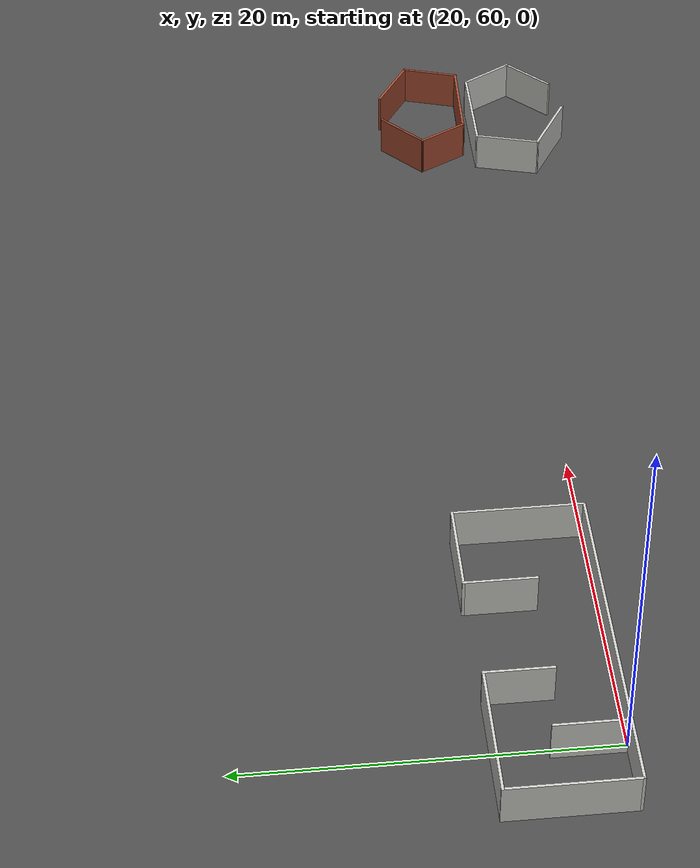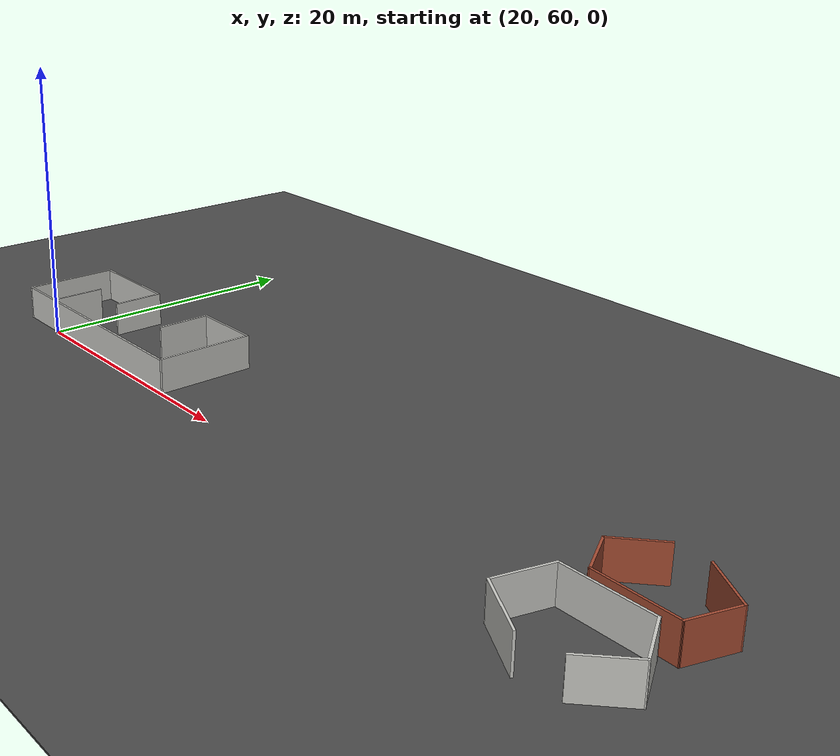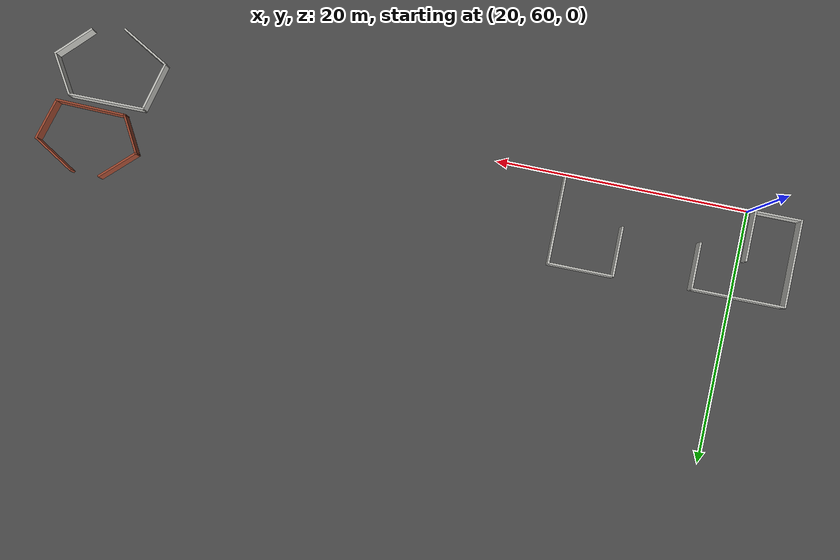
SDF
<sdf version="1.6">
 <world name="default">
  <model name="ground_plane">
   <static>1</static>
   <link name="link">
    <collision name="collision">
     <geometry><plane><normal>0 0 1</normal><size>200 200</size></plane></geometry>
     <surface><friction><ode><mu>100</mu><mu2>50</mu2></ode></friction></surface>
    </collision>
    <visual name="visual">
     <cast_shadows>0</cast_shadows>
     <geometry><plane><normal>0 0 1</normal><size>200 200</size></plane></geometry>
     <material>
      <script><uri>file://media/materials/scripts/gazebo.material</uri><name>Gazebo/Grey</name></script>
     </material>
    </visual>
   </link>
  </model>
  <model name="asphalt_plane">
   <static>1</static>
   <link name="link">
    <collision name="collision"><geometry><box><size>200 200 0.1</size></box></geometry></collision>
    <visual name="visual">
     <cast_shadows>0</cast_shadows>
     <geometry><box><size>200 200 0.1</size></box></geometry>
     <material>
      <script>
       <uri>model://asphalt_plane/materials/scripts</uri>
       <uri>model://asphalt_plane/materials/textures</uri>
       <name>vrc/asphalt</name>
      </script>
     </material>
    </visual>
   </link>
  </model>
  <model name="concrete_room2_1">
   <pose>25.2761 63.5704 0 0 -0 0</pose>
   <link name="Wall_61">
    <collision name="Wall_61_Collision">
     <geometry><box><size>5.25 0.15 2.5</size></box></geometry>
     <pose>0 0 1.25 0 -0 0</pose>
    </collision>
    <visual name="Wall_61_Visual">
     <pose>0 0 1.25 0 -0 0</pose>
     <geometry><box><size>5.25 0.15 2.5</size></box></geometry>
     <material>
      <script><uri>file://media/materials/scripts/gazebo.material</uri><name>Gazebo/CeilingTiled</name></script>
      <ambient>1 1 1 1</ambient>
     </material>
     <meta><layer>0</layer></meta>
    </visual>
    <pose>6.75 3.55 0 0 -0 0</pose>
   </link>
   <link name="Wall_62">
    <collision name="Wall_62_Collision">
     <geometry><box><size>7.25 0.15 2.5</size></box></geometry>
     <pose>0 0 1.25 0 -0 0</pose>
    </collision>
    <visual name="Wall_62_Visual">
     <pose>0 0 1.25 0 -0 0</pose>
     <geometry><box><size>7.25 0.15 2.5</size></box></geometry>
     <material>
      <script><uri>file://media/materials/scripts/gazebo.material</uri><name>Gazebo/CeilingTiled</name></script>
      <ambient>1 1 1 1</ambient>
     </material>
     <meta><layer>0</layer></meta>
    </visual>
    <pose>9.3 0 0 0 0 -1.5708</pose>
   </link>
   <link name="Wall_63">
    <collision name="Wall_63_Collision">
     <geometry><box><size>18.75 0.15 2.5</size></box></geometry>
     <pose>0 0 1.25 0 -0 0</pose>
    </collision>
    <visual name="Wall_63_Visual">
     <pose>0 0 1.25 0 -0 0</pose>
     <geometry><box><size>18.75 0.15 2.5</size></box></geometry>
     <material>
      <script><uri>file://media/materials/scripts/gazebo.material</uri><name>Gazebo/CeilingTiled</name></script>
      <ambient>1 1 1 1</ambient>
     </material>
     <meta><layer>0</layer></meta>
    </visual>
    <pose>0 -3.55 0 0 -0 3.14159</pose>
   </link>
   <link name="Wall_64">
    <collision name="Wall_64_Collision">
     <geometry><box><size>7 0.15 2.5</size></box></geometry>
     <pose>0 0 1.25 0 -0 0</pose>
    </collision>
    <visual name="Wall_64_Visual">
     <pose>0 0 1.25 0 -0 0</pose>
     <geometry><box><size>7 0.15 2.5</size></box></geometry>
     <material>
      <script><uri>file://media/materials/scripts/gazebo.material</uri><name>Gazebo/CeilingTiled</name></script>
      <ambient>1 1 1 1</ambient>
     </material>
     <meta><layer>0</layer></meta>
    </visual>
    <pose>-9.3 -0.125 0 0 -0 1.5708</pose>
   </link>
   <link name="Wall_65">
    <collision name="Wall_65_Collision">
     <geometry><box><size>7.5 0.15 2.5</size></box></geometry>
     <pose>0 0 1.25 0 -0 0</pose>
    </collision>
    <visual name="Wall_65_Visual">
     <pose>0 0 1.25 0 -0 0</pose>
     <geometry><box><size>7.5 0.15 2.5</size></box></geometry>
     <material>
      <script><uri>file://media/materials/scripts/gazebo.material</uri><name>Gazebo/CeilingTiled</name></script>
      <ambient>1 1 1 1</ambient>
     </material>
     <meta><layer>0</layer></meta>
    </visual>
    <pose>-5.625 3.3 0 0 -0 0</pose>
   </link>
   <link name="Wall_66">
    <collision name="Wall_66_Collision">
     <geometry><box><size>3.75 0.15 2.5</size></box></geometry>
     <pose>0 0 1.25 0 -0 0</pose>
    </collision>
    <visual name="Wall_66_Visual">
     <pose>0 0 1.25 0 -0 0</pose>
     <geometry><box><size>3.75 0.15 2.5</size></box></geometry>
     <material>
      <script><uri>file://media/materials/scripts/gazebo.material</uri><name>Gazebo/CeilingTiled</name></script>
      <ambient>1 1 1 1</ambient>
     </material>
     <meta><layer>0</layer></meta>
    </visual>
    <pose>-1.95 1.5 0 0 0 -1.5708</pose>
   </link>
   <link name="Wall_70">
    <collision name="Wall_70_Collision">
     <geometry><box><size>4 0.15 2.5</size></box></geometry>
     <pose>0 0 1.25 0 -0 0</pose>
    </collision>
    <visual name="Wall_70_Visual">
     <pose>0 0 1.25 0 -0 0</pose>
     <geometry><box><size>4 0.15 2.5</size></box></geometry>
     <material>
      <script><uri>file://media/materials/scripts/gazebo.material</uri><name>Gazebo/CeilingTiled</name></script>
      <ambient>1 1 1 1</ambient>
     </material>
     <meta><layer>0</layer></meta>
    </visual>
    <pose>4.2 1.625 0 0 0 -1.5708</pose>
   </link>
   <link name="Wall_72">
    <collision name="Wall_72_Collision">
     <geometry><box><size>4 0.15 2.5</size></box></geometry>
     <pose>0 0 1.25 0 -0 0</pose>
    </collision>
    <visual name="Wall_72_Visual">
     <pose>0 0 1.25 0 -0 0</pose>
     <geometry><box><size>4 0.15 2.5</size></box></geometry>
     <material>
      <script><uri>file://media/materials/scripts/gazebo.material</uri><name>Gazebo/CeilingTiled</name></script>
      <ambient>1 1 1 1</ambient>
     </material>
     <meta><layer>0</layer></meta>
    </visual>
    <pose>-5.65005 -1.59593 0 0 -0 1.5708</pose>
   </link>
   <static>1</static>
  </model>
  <model name="concrete_room_2">
   <pose>70.989 58.7386 0 0 -0 0</pose>
   <link name="Wall_54">
    <collision name="Wall_54_Collision">
     <geometry><box><size>4.25 0.15 2.5</size></box></geometry>
     <pose>0 0 1.25 0 -0 0</pose>
    </collision>
    <visual name="Wall_54_Visual">
     <pose>0 0 1.25 0 -0 0</pose>
     <geometry><box><size>4.25 0.15 2.5</size></box></geometry>
     <material>
      <script><uri>file://media/materials/scripts/gazebo.material</uri><name>Gazebo/CeilingTiled</name></script>
      <ambient>1 1 1 1</ambient>
     </material>
     <meta><layer>0</layer></meta>
    </visual>
    <pose>-2.48718 -1.85941 0 0 -0 2.61799</pose>
   </link>
   <link name="Wall_55">
    <collision name="Wall_55_Collision">
     <geometry><box><size>4 0.15 2.5</size></box></geometry>
     <pose>0 0 1.25 0 -0 0</pose>
    </collision>
    <visual name="Wall_55_Visual">
     <pose>0 0 1.25 0 -0 0</pose>
     <geometry><box><size>4 0.15 2.5</size></box></geometry>
     <material>
      <script><uri>file://media/materials/scripts/gazebo.material</uri><name>Gazebo/CeilingTiled</name></script>
      <ambient>1 1 1 1</ambient>
     </material>
     <meta><layer>0</layer></meta>
    </visual>
    <pose>-3.76431 1.025 0 0 -0 1.309</pose>
   </link>
   <link name="Wall_56">
    <collision name="Wall_56_Collision">
     <geometry><box><size>6 0.15 2.5</size></box></geometry>
     <pose>0 0 1.25 0 -0 0</pose>
    </collision>
    <visual name="Wall_56_Visual">
     <pose>0 0 1.25 0 -0 0</pose>
     <geometry><box><size>6 0.15 2.5</size></box></geometry>
     <material>
      <script><uri>file://media/materials/scripts/gazebo.material</uri><name>Gazebo/CeilingTiled</name></script>
      <ambient>1 1 1 1</ambient>
     </material>
     <meta><layer>0</layer></meta>
    </visual>
    <pose>-0.34108 2.88441 0 0 -0 0</pose>
   </link>
   <link name="Wall_57">
    <collision name="Wall_57_Collision">
     <geometry><box><size>3.5 0.15 2.5</size></box></geometry>
     <pose>0 0 1.25 0 -0 0</pose>
    </collision>
    <visual name="Wall_57_Visual">
     <pose>0 0 1.25 0 -0 0</pose>
     <geometry><box><size>3.5 0.15 2.5</size></box></geometry>
     <material>
      <script><uri>file://media/materials/scripts/gazebo.material</uri><name>Gazebo/CeilingTiled</name></script>
      <ambient>1 1 1 1</ambient>
     </material>
     <meta><layer>0</layer></meta>
    </visual>
    <pose>3.42142 1.43382 0 0 0 -1.0472</pose>
   </link>
   <link name="Wall_58">
    <collision name="Wall_58_Collision">
     <geometry><box><size>3.5 0.15 2.5</size></box></geometry>
     <pose>0 0 1.25 0 -0 0</pose>
    </collision>
    <visual name="Wall_58_Visual">
     <pose>0 0 1.25 0 -0 0</pose>
     <geometry><box><size>3.5 0.15 2.5</size></box></geometry>
     <material>
      <script><uri>file://media/materials/scripts/gazebo.material</uri><name>Gazebo/CeilingTiled</name></script>
      <ambient>1 1 1 1</ambient>
     </material>
     <meta><layer>0</layer></meta>
    </visual>
    <pose>3.07452 -1.20118 0 0 0 -2.35619</pose>
   </link>
   <static>1</static>
  </model>
  <model name="brick_room1_clone_clone_clone_2">
   <pose>71.4548 64.8398 0 0 -0 3.10975</pose>
   <link name="Wall_11">
    <collision name="Wall_11_Collision">
     <geometry><box><size>3.25 0.15 2.5</size></box></geometry>
     <pose>0 0 1.25 0 -0 0</pose>
    </collision>
    <visual name="Wall_11_Visual">
     <pose>0 0 1.25 0 -0 0</pose>
     <geometry><box><size>3.25 0.15 2.5</size></box></geometry>
     <material>
      <script><uri>file://media/materials/scripts/gazebo.material</uri><name>Gazebo/Bricks</name></script>
      <ambient>1 1 1 1</ambient>
     </material>
    </visual>
    <pose>3.12132 1.19483 0 0 0 -1.0472</pose>
   </link>
   <link name="Wall_12">
    <collision name="Wall_12_Collision">
     <geometry><box><size>3.5 0.15 2.5</size></box></geometry>
     <pose>0 0 1.25 0 -0 0</pose>
    </collision>
    <visual name="Wall_12_Visual">
     <pose>0 0 1.25 0 -0 0</pose>
     <geometry><box><size>3.5 0.15 2.5</size></box></geometry>
     <material>
      <script><uri>file://media/materials/scripts/gazebo.material</uri><name>Gazebo/Bricks</name></script>
      <ambient>1 1 1 1</ambient>
     </material>
    </visual>
    <pose>2.71192 -1.33192 0 0 0 -2.35619</pose>
   </link>
   <link name="Wall_7">
    <collision name="Wall_7_Collision">
     <geometry><box><size>5.52935 0.15 2.5</size></box></geometry>
     <pose>0 0 1.25 0 -0 0</pose>
    </collision>
    <visual name="Wall_7_Visual">
     <pose>0 0 1.25 0 -0 0</pose>
     <geometry><box><size>5.52935 0.15 2.5</size></box></geometry>
     <material>
      <script><uri>file://media/materials/scripts/gazebo.material</uri><name>Gazebo/Bricks</name></script>
      <ambient>1 1 1 1</ambient>
     </material>
    </visual>
    <pose>-0.343285 2.51793 0 0 0 -3.13444</pose>
   </link>
   <link name="Wall_8">
    <collision name="Wall_8_Collision">
     <geometry><box><size>3.5 0.15 2.5</size></box></geometry>
     <pose>0 0 1.25 0 -0 0</pose>
    </collision>
    <visual name="Wall_8_Visual">
     <pose>0 0 1.25 0 -0 0</pose>
     <geometry><box><size>3.5 0.15 2.5</size></box></geometry>
     <material>
      <script><uri>file://media/materials/scripts/gazebo.material</uri><name>Gazebo/Bricks</name></script>
      <ambient>1 1 1 1</ambient>
     </material>
    </visual>
    <pose>-3.46641 0.880761 0 0 0 -1.8326</pose>
   </link>
   <link name="Wall_9">
    <collision name="Wall_9_Collision">
     <geometry><box><size>3.75 0.15 2.5</size></box></geometry>
     <pose>0 0 1.25 0 -0 0</pose>
    </collision>
    <visual name="Wall_9_Visual">
     <pose>0 0 1.25 0 -0 0</pose>
     <geometry><box><size>3.75 0.15 2.5</size></box></geometry>
     <material>
      <script><uri>file://media/materials/scripts/gazebo.material</uri><name>Gazebo/Bricks</name></script>
      <ambient>1 1 1 1</ambient>
     </material>
    </visual>
    <pose>-2.34109 -1.63716 0 0 0 -0.523599</pose>
   </link>
   <static>1</static>
  </model>
 </world>
</sdf>
